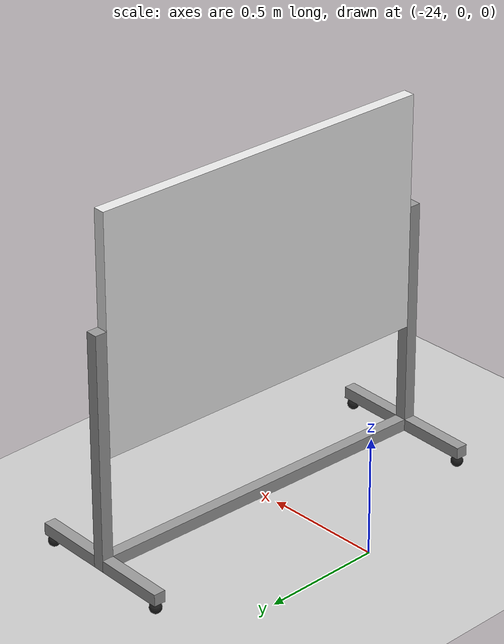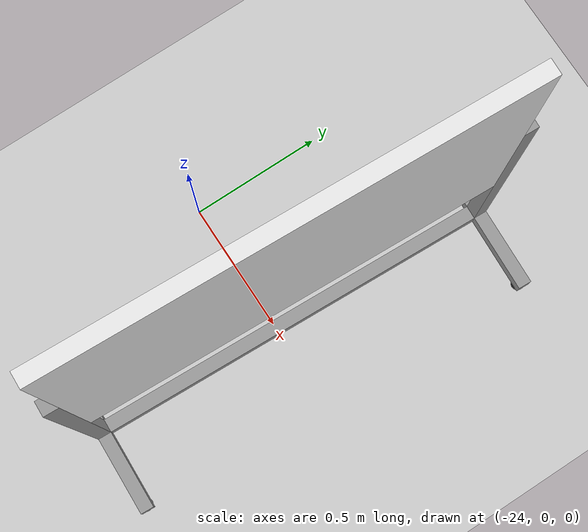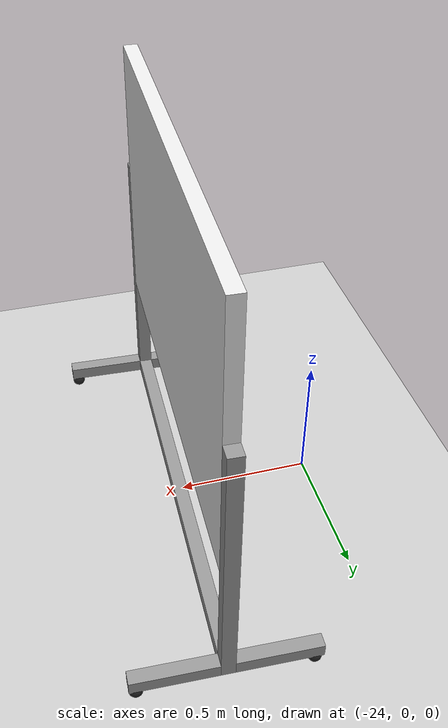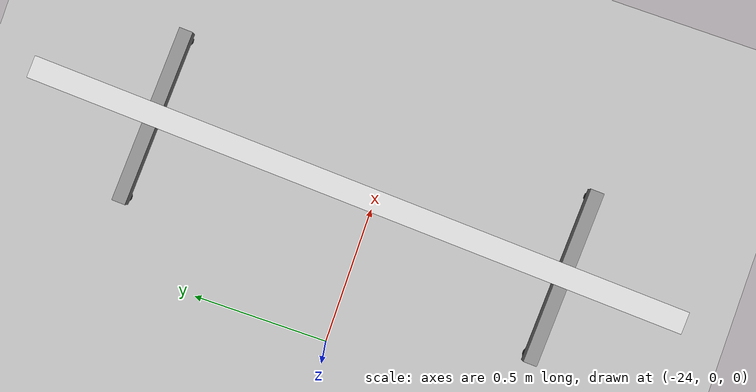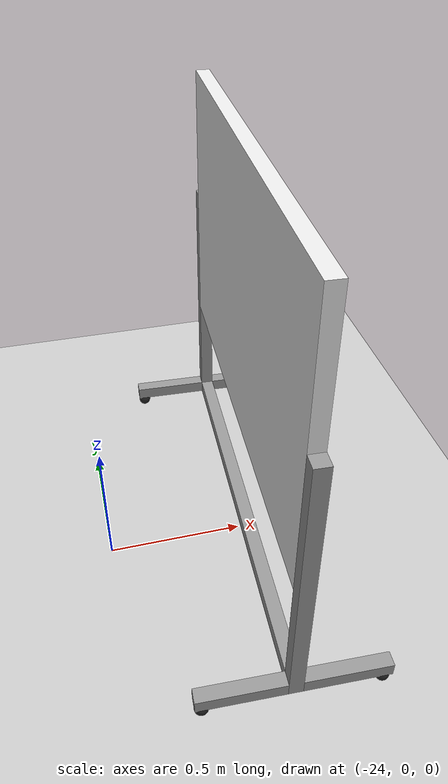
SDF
<sdf version="1.6">
 <world name="default">
  <model name="ground_plane">
   <static>1</static>
   <link name="link">
    <collision name="collision">
     <geometry><plane><normal>0 0 1</normal><size>100 100</size></plane></geometry>
     <surface><friction><ode><mu>100</mu><mu2>50</mu2></ode></friction></surface>
    </collision>
    <visual name="visual">
     <cast_shadows>0</cast_shadows>
     <geometry><plane><normal>0 0 1</normal><size>100 100</size></plane></geometry>
     <material>
      <script><uri>file://media/materials/scripts/gazebo.material</uri><name>Gazebo/Grey</name></script>
     </material>
    </visual>
   </link>
  </model>
  <model name="whiteboard">
   <link name="link_0">
    <pose>0 0 1.09583 0 -0 0</pose>
    <inertial>
     <mass>1</mass>
     <inertia>
      <ixx>0.166667</ixx>
      <ixy>0</ixy>
      <ixz>0</ixz>
      <iyy>0.166667</iyy>
      <iyz>0</iyz>
      <izz>0.166667</izz>
     </inertia>
    </inertial>
    <visual name="visual">
     <geometry><box><size>0.05 1.5 1</size></box></geometry>
     <material>
      <lighting>1</lighting>
      <script><uri>file://media/materials/scripts/gazebo.material</uri><name>Gazebo/White</name></script>
      <shader type="vertex"><normal_map>__default__</normal_map></shader>
     </material>
    </visual>
    <collision name="collision">
     <geometry><box><size>0.05 1.5 1</size></box></geometry>
     <surface>
      <friction>
       <ode><mu>1</mu><mu2>1</mu2><fdir1>0 0 0</fdir1><slip1>0</slip1><slip2>0</slip2></ode>
       <torsional>
        <coefficient>1</coefficient>
        <patch_radius>0</patch_radius>
        <surface_radius>0</surface_radius>
        <use_patch_radius>1</use_patch_radius>
        <ode><slip>0</slip></ode>
       </torsional>
      </friction>
      <bounce><restitution_coefficient>0</restitution_coefficient><threshold>1e+06</threshold></bounce>
      <contact>
       <collide_without_contact>0</collide_without_contact>
       <collide_without_contact_bitmask>1</collide_without_contact_bitmask>
       <collide_bitmask>1</collide_bitmask>
       <ode>
        <soft_cfm>0</soft_cfm>
        <soft_erp>0.2</soft_erp>
        <kp>1e+13</kp>
        <kd>1</kd>
        <max_vel>0.01</max_vel>
        <min_depth>0</min_depth>
       </ode>
       <bullet>
        <split_impulse>1</split_impulse>
        <split_impulse_penetration_threshold>-0.01</split_impulse_penetration_threshold>
        <soft_cfm>0</soft_cfm>
        <soft_erp>0.2</soft_erp>
        <kp>1e+13</kp>
        <kd>1</kd>
       </bullet>
      </contact>
     </surface>
    </collision>
   </link>
   <link name="link_1">
    <pose>0 0 0.145833 0 -0 0</pose>
    <inertial>
     <mass>1</mass>
     <inertia>
      <ixx>0.166667</ixx>
      <ixy>0</ixy>
      <ixz>0</ixz>
      <iyy>0.166667</iyy>
      <iyz>0</iyz>
      <izz>0.166667</izz>
     </inertia>
    </inertial>
    <visual name="visual">
     <geometry><box><size>0.05 1.5 0.05</size></box></geometry>
     <material>
      <lighting>1</lighting>
      <script><uri>file://media/materials/scripts/gazebo.material</uri><name>Gazebo/Grey</name></script>
      <ambient>0.3 0.3 0.3 1</ambient>
      <diffuse>0.7 0.7 0.7 1</diffuse>
      <specular>0.01 0.01 0.01 1</specular>
      <emissive>0 0 0 1</emissive>
      <shader type="vertex"><normal_map>__default__</normal_map></shader>
     </material>
    </visual>
    <collision name="collision">
     <geometry><box><size>0.05 1.5 0.05</size></box></geometry>
     <surface>
      <friction>
       <ode><mu>1</mu><mu2>1</mu2><fdir1>0 0 0</fdir1><slip1>0</slip1><slip2>0</slip2></ode>
       <torsional>
        <coefficient>1</coefficient>
        <patch_radius>0</patch_radius>
        <surface_radius>0</surface_radius>
        <use_patch_radius>1</use_patch_radius>
        <ode><slip>0</slip></ode>
       </torsional>
      </friction>
      <bounce><restitution_coefficient>0</restitution_coefficient><threshold>1e+06</threshold></bounce>
      <contact>
       <collide_without_contact>0</collide_without_contact>
       <collide_without_contact_bitmask>1</collide_without_contact_bitmask>
       <collide_bitmask>1</collide_bitmask>
       <ode>
        <soft_cfm>0</soft_cfm>
        <soft_erp>0.2</soft_erp>
        <kp>1e+13</kp>
        <kd>1</kd>
        <max_vel>0.01</max_vel>
        <min_depth>0</min_depth>
       </ode>
       <bullet>
        <split_impulse>1</split_impulse>
        <split_impulse_penetration_threshold>-0.01</split_impulse_penetration_threshold>
        <soft_cfm>0</soft_cfm>
        <soft_erp>0.2</soft_erp>
        <kp>1e+13</kp>
        <kd>1</kd>
       </bullet>
      </contact>
     </surface>
    </collision>
   </link>
   <link name="link_2">
    <pose>-0.175 -0.775 0.145833 0 -0 0</pose>
    <inertial>
     <mass>1</mass>
     <inertia>
      <ixx>0.166667</ixx>
      <ixy>0</ixy>
      <ixz>0</ixz>
      <iyy>0.166667</iyy>
      <iyz>0</iyz>
      <izz>0.166667</izz>
     </inertia>
    </inertial>
    <visual name="visual">
     <geometry><box><size>0.3 0.05 0.05</size></box></geometry>
     <material>
      <lighting>1</lighting>
      <script><uri>file://media/materials/scripts/gazebo.material</uri><name>Gazebo/Grey</name></script>
      <ambient>0.3 0.3 0.3 1</ambient>
      <diffuse>0.7 0.7 0.7 1</diffuse>
      <specular>0.01 0.01 0.01 1</specular>
      <emissive>0 0 0 1</emissive>
      <shader type="vertex"><normal_map>__default__</normal_map></shader>
     </material>
    </visual>
    <collision name="collision">
     <geometry><box><size>0.3 0.05 0.05</size></box></geometry>
     <surface>
      <friction>
       <ode><mu>1</mu><mu2>1</mu2><fdir1>0 0 0</fdir1><slip1>0</slip1><slip2>0</slip2></ode>
       <torsional>
        <coefficient>1</coefficient>
        <patch_radius>0</patch_radius>
        <surface_radius>0</surface_radius>
        <use_patch_radius>1</use_patch_radius>
        <ode><slip>0</slip></ode>
       </torsional>
      </friction>
      <bounce><restitution_coefficient>0</restitution_coefficient><threshold>1e+06</threshold></bounce>
      <contact>
       <collide_without_contact>0</collide_without_contact>
       <collide_without_contact_bitmask>1</collide_without_contact_bitmask>
       <collide_bitmask>1</collide_bitmask>
       <ode>
        <soft_cfm>0</soft_cfm>
        <soft_erp>0.2</soft_erp>
        <kp>1e+13</kp>
        <kd>1</kd>
        <max_vel>0.01</max_vel>
        <min_depth>0</min_depth>
       </ode>
       <bullet>
        <split_impulse>1</split_impulse>
        <split_impulse_penetration_threshold>-0.01</split_impulse_penetration_threshold>
        <soft_cfm>0</soft_cfm>
        <soft_erp>0.2</soft_erp>
        <kp>1e+13</kp>
        <kd>1</kd>
       </bullet>
      </contact>
     </surface>
    </collision>
   </link>
   <link name="link_2_clone">
    <pose>0.175 0.775 0.145833 0 -0 0</pose>
    <inertial>
     <mass>1</mass>
     <inertia>
      <ixx>0.166667</ixx>
      <ixy>0</ixy>
      <ixz>0</ixz>
      <iyy>0.166667</iyy>
      <iyz>0</iyz>
      <izz>0.166667</izz>
     </inertia>
    </inertial>
    <visual name="visual">
     <geometry><box><size>0.3 0.05 0.05</size></box></geometry>
     <material>
      <lighting>1</lighting>
      <script><uri>file://media/materials/scripts/gazebo.material</uri><name>Gazebo/Grey</name></script>
      <ambient>0.3 0.3 0.3 1</ambient>
      <diffuse>0.7 0.7 0.7 1</diffuse>
      <specular>0.01 0.01 0.01 1</specular>
      <emissive>0 0 0 1</emissive>
      <shader type="vertex"><normal_map>__default__</normal_map></shader>
     </material>
    </visual>
    <collision name="collision">
     <geometry><box><size>0.3 0.05 0.05</size></box></geometry>
     <surface>
      <friction>
       <ode><mu>1</mu><mu2>1</mu2><fdir1>0 0 0</fdir1><slip1>0</slip1><slip2>0</slip2></ode>
       <torsional>
        <coefficient>1</coefficient>
        <patch_radius>0</patch_radius>
        <surface_radius>0</surface_radius>
        <use_patch_radius>1</use_patch_radius>
        <ode><slip>0</slip></ode>
       </torsional>
      </friction>
      <bounce><restitution_coefficient>0</restitution_coefficient><threshold>1e+06</threshold></bounce>
      <contact>
       <collide_without_contact>0</collide_without_contact>
       <collide_without_contact_bitmask>1</collide_without_contact_bitmask>
       <collide_bitmask>1</collide_bitmask>
       <ode>
        <soft_cfm>0</soft_cfm>
        <soft_erp>0.2</soft_erp>
        <kp>1e+13</kp>
        <kd>1</kd>
        <max_vel>0.01</max_vel>
        <min_depth>0</min_depth>
       </ode>
       <bullet>
        <split_impulse>1</split_impulse>
        <split_impulse_penetration_threshold>-0.01</split_impulse_penetration_threshold>
        <soft_cfm>0</soft_cfm>
        <soft_erp>0.2</soft_erp>
        <kp>1e+13</kp>
        <kd>1</kd>
       </bullet>
      </contact>
     </surface>
    </collision>
   </link>
   <link name="link_2_clone_clone">
    <pose>0.175 -0.775 0.145833 0 -0 0</pose>
    <inertial>
     <mass>1</mass>
     <inertia>
      <ixx>0.166667</ixx>
      <ixy>0</ixy>
      <ixz>0</ixz>
      <iyy>0.166667</iyy>
      <iyz>0</iyz>
      <izz>0.166667</izz>
     </inertia>
    </inertial>
    <visual name="visual">
     <geometry><box><size>0.3 0.05 0.05</size></box></geometry>
     <material>
      <lighting>1</lighting>
      <script><uri>file://media/materials/scripts/gazebo.material</uri><name>Gazebo/Grey</name></script>
      <ambient>0.3 0.3 0.3 1</ambient>
      <diffuse>0.7 0.7 0.7 1</diffuse>
      <specular>0.01 0.01 0.01 1</specular>
      <emissive>0 0 0 1</emissive>
      <shader type="vertex"><normal_map>__default__</normal_map></shader>
     </material>
    </visual>
    <collision name="collision">
     <geometry><box><size>0.3 0.05 0.05</size></box></geometry>
     <surface>
      <friction>
       <ode><mu>1</mu><mu2>1</mu2><fdir1>0 0 0</fdir1><slip1>0</slip1><slip2>0</slip2></ode>
       <torsional>
        <coefficient>1</coefficient>
        <patch_radius>0</patch_radius>
        <surface_radius>0</surface_radius>
        <use_patch_radius>1</use_patch_radius>
        <ode><slip>0</slip></ode>
       </torsional>
      </friction>
      <bounce><restitution_coefficient>0</restitution_coefficient><threshold>1e+06</threshold></bounce>
      <contact>
       <collide_without_contact>0</collide_without_contact>
       <collide_without_contact_bitmask>1</collide_without_contact_bitmask>
       <collide_bitmask>1</collide_bitmask>
       <ode>
        <soft_cfm>0</soft_cfm>
        <soft_erp>0.2</soft_erp>
        <kp>1e+13</kp>
        <kd>1</kd>
        <max_vel>0.01</max_vel>
        <min_depth>0</min_depth>
       </ode>
       <bullet>
        <split_impulse>1</split_impulse>
        <split_impulse_penetration_threshold>-0.01</split_impulse_penetration_threshold>
        <soft_cfm>0</soft_cfm>
        <soft_erp>0.2</soft_erp>
        <kp>1e+13</kp>
        <kd>1</kd>
       </bullet>
      </contact>
     </surface>
    </collision>
   </link>
   <link name="link_2_clone_clone_clone">
    <pose>-0.175 0.775 0.145833 0 -0 0</pose>
    <inertial>
     <mass>1</mass>
     <inertia>
      <ixx>0.166667</ixx>
      <ixy>0</ixy>
      <ixz>0</ixz>
      <iyy>0.166667</iyy>
      <iyz>0</iyz>
      <izz>0.166667</izz>
     </inertia>
    </inertial>
    <visual name="visual">
     <geometry><box><size>0.3 0.05 0.05</size></box></geometry>
     <material>
      <lighting>1</lighting>
      <script><uri>file://media/materials/scripts/gazebo.material</uri><name>Gazebo/Grey</name></script>
      <ambient>0.3 0.3 0.3 1</ambient>
      <diffuse>0.7 0.7 0.7 1</diffuse>
      <specular>0.01 0.01 0.01 1</specular>
      <emissive>0 0 0 1</emissive>
      <shader type="vertex"><normal_map>__default__</normal_map></shader>
     </material>
    </visual>
    <collision name="collision">
     <geometry><box><size>0.3 0.05 0.05</size></box></geometry>
     <surface>
      <friction>
       <ode><mu>1</mu><mu2>1</mu2><fdir1>0 0 0</fdir1><slip1>0</slip1><slip2>0</slip2></ode>
       <torsional>
        <coefficient>1</coefficient>
        <patch_radius>0</patch_radius>
        <surface_radius>0</surface_radius>
        <use_patch_radius>1</use_patch_radius>
        <ode><slip>0</slip></ode>
       </torsional>
      </friction>
      <bounce><restitution_coefficient>0</restitution_coefficient><threshold>1e+06</threshold></bounce>
      <contact>
       <collide_without_contact>0</collide_without_contact>
       <collide_without_contact_bitmask>1</collide_without_contact_bitmask>
       <collide_bitmask>1</collide_bitmask>
       <ode>
        <soft_cfm>0</soft_cfm>
        <soft_erp>0.2</soft_erp>
        <kp>1e+13</kp>
        <kd>1</kd>
        <max_vel>0.01</max_vel>
        <min_depth>0</min_depth>
       </ode>
       <bullet>
        <split_impulse>1</split_impulse>
        <split_impulse_penetration_threshold>-0.01</split_impulse_penetration_threshold>
        <soft_cfm>0</soft_cfm>
        <soft_erp>0.2</soft_erp>
        <kp>1e+13</kp>
        <kd>1</kd>
       </bullet>
      </contact>
     </surface>
    </collision>
   </link>
   <link name="link_3">
    <pose>0 -0.775 0.620833 0 -0 0</pose>
    <inertial>
     <mass>1</mass>
     <inertia>
      <ixx>0.166667</ixx>
      <ixy>0</ixy>
      <ixz>0</ixz>
      <iyy>0.166667</iyy>
      <iyz>0</iyz>
      <izz>0.166667</izz>
     </inertia>
    </inertial>
    <visual name="visual">
     <geometry><box><size>0.05 0.05 1</size></box></geometry>
     <material>
      <lighting>1</lighting>
      <script><uri>file://media/materials/scripts/gazebo.material</uri><name>Gazebo/Grey</name></script>
      <ambient>0.3 0.3 0.3 1</ambient>
      <diffuse>0.7 0.7 0.7 1</diffuse>
      <specular>0.01 0.01 0.01 1</specular>
      <emissive>0 0 0 1</emissive>
      <shader type="vertex"><normal_map>__default__</normal_map></shader>
     </material>
    </visual>
    <collision name="collision">
     <geometry><box><size>0.05 0.05 1</size></box></geometry>
     <surface>
      <friction>
       <ode><mu>1</mu><mu2>1</mu2><fdir1>0 0 0</fdir1><slip1>0</slip1><slip2>0</slip2></ode>
       <torsional>
        <coefficient>1</coefficient>
        <patch_radius>0</patch_radius>
        <surface_radius>0</surface_radius>
        <use_patch_radius>1</use_patch_radius>
        <ode><slip>0</slip></ode>
       </torsional>
      </friction>
      <bounce><restitution_coefficient>0</restitution_coefficient><threshold>1e+06</threshold></bounce>
      <contact>
       <collide_without_contact>0</collide_without_contact>
       <collide_without_contact_bitmask>1</collide_without_contact_bitmask>
       <collide_bitmask>1</collide_bitmask>
       <ode>
        <soft_cfm>0</soft_cfm>
        <soft_erp>0.2</soft_erp>
        <kp>1e+13</kp>
        <kd>1</kd>
        <max_vel>0.01</max_vel>
        <min_depth>0</min_depth>
       </ode>
       <bullet>
        <split_impulse>1</split_impulse>
        <split_impulse_penetration_threshold>-0.01</split_impulse_penetration_threshold>
        <soft_cfm>0</soft_cfm>
        <soft_erp>0.2</soft_erp>
        <kp>1e+13</kp>
        <kd>1</kd>
       </bullet>
      </contact>
     </surface>
    </collision>
   </link>
   <link name="link_3_clone">
    <pose>0 0.775 0.620833 0 -0 0</pose>
    <inertial>
     <mass>1</mass>
     <inertia>
      <ixx>0.166667</ixx>
      <ixy>0</ixy>
      <ixz>0</ixz>
      <iyy>0.166667</iyy>
      <iyz>0</iyz>
      <izz>0.166667</izz>
     </inertia>
    </inertial>
    <visual name="visual">
     <geometry><box><size>0.05 0.05 1</size></box></geometry>
     <material>
      <lighting>1</lighting>
      <script><uri>file://media/materials/scripts/gazebo.material</uri><name>Gazebo/Grey</name></script>
      <ambient>0.3 0.3 0.3 1</ambient>
      <diffuse>0.7 0.7 0.7 1</diffuse>
      <specular>0.01 0.01 0.01 1</specular>
      <emissive>0 0 0 1</emissive>
      <shader type="vertex"><normal_map>__default__</normal_map></shader>
     </material>
    </visual>
    <collision name="collision">
     <geometry><box><size>0.05 0.05 1</size></box></geometry>
     <surface>
      <friction>
       <ode><mu>1</mu><mu2>1</mu2><fdir1>0 0 0</fdir1><slip1>0</slip1><slip2>0</slip2></ode>
       <torsional>
        <coefficient>1</coefficient>
        <patch_radius>0</patch_radius>
        <surface_radius>0</surface_radius>
        <use_patch_radius>1</use_patch_radius>
        <ode><slip>0</slip></ode>
       </torsional>
      </friction>
      <bounce><restitution_coefficient>0</restitution_coefficient><threshold>1e+06</threshold></bounce>
      <contact>
       <collide_without_contact>0</collide_without_contact>
       <collide_without_contact_bitmask>1</collide_without_contact_bitmask>
       <collide_bitmask>1</collide_bitmask>
       <ode>
        <soft_cfm>0</soft_cfm>
        <soft_erp>0.2</soft_erp>
        <kp>1e+13</kp>
        <kd>1</kd>
        <max_vel>0.01</max_vel>
        <min_depth>0</min_depth>
       </ode>
       <bullet>
        <split_impulse>1</split_impulse>
        <split_impulse_penetration_threshold>-0.01</split_impulse_penetration_threshold>
        <soft_cfm>0</soft_cfm>
        <soft_erp>0.2</soft_erp>
        <kp>1e+13</kp>
        <kd>1</kd>
       </bullet>
      </contact>
     </surface>
    </collision>
   </link>
   <link name="link_4">
    <pose>-0.3 -0.775 0.095833 0 -0 0</pose>
    <inertial>
     <mass>1</mass>
     <inertia><ixx>0.1</ixx><ixy>0</ixy><ixz>0</ixz><iyy>0.1</iyy><iyz>0</iyz><izz>0.1</izz></inertia>
    </inertial>
    <visual name="visual">
     <geometry><sphere><radius>0.025</radius></sphere></geometry>
     <material>
      <lighting>1</lighting>
      <script><uri>file://media/materials/scripts/gazebo.material</uri><name>Gazebo/Black</name></script>
      <shader type="vertex"><normal_map>__default__</normal_map></shader>
     </material>
    </visual>
    <collision name="collision">
     <geometry><sphere><radius>0.025</radius></sphere></geometry>
     <surface>
      <friction>
       <ode><mu>1</mu><mu2>1</mu2><fdir1>0 0 0</fdir1><slip1>0</slip1><slip2>0</slip2></ode>
       <torsional>
        <coefficient>1</coefficient>
        <patch_radius>0</patch_radius>
        <surface_radius>0</surface_radius>
        <use_patch_radius>1</use_patch_radius>
        <ode><slip>0</slip></ode>
       </torsional>
      </friction>
      <bounce><restitution_coefficient>0</restitution_coefficient><threshold>1e+06</threshold></bounce>
      <contact>
       <collide_without_contact>0</collide_without_contact>
       <collide_without_contact_bitmask>1</collide_without_contact_bitmask>
       <collide_bitmask>1</collide_bitmask>
       <ode>
        <soft_cfm>0</soft_cfm>
        <soft_erp>0.2</soft_erp>
        <kp>1e+13</kp>
        <kd>1</kd>
        <max_vel>0.01</max_vel>
        <min_depth>0</min_depth>
       </ode>
       <bullet>
        <split_impulse>1</split_impulse>
        <split_impulse_penetration_threshold>-0.01</split_impulse_penetration_threshold>
        <soft_cfm>0</soft_cfm>
        <soft_erp>0.2</soft_erp>
        <kp>1e+13</kp>
        <kd>1</kd>
       </bullet>
      </contact>
     </surface>
    </collision>
   </link>
   <link name="link_4_clone">
    <pose>0.3 0.775 0.095833 0 -0 0</pose>
    <inertial>
     <mass>1</mass>
     <inertia><ixx>0.1</ixx><ixy>0</ixy><ixz>0</ixz><iyy>0.1</iyy><iyz>0</iyz><izz>0.1</izz></inertia>
    </inertial>
    <visual name="visual">
     <geometry><sphere><radius>0.025</radius></sphere></geometry>
     <material>
      <lighting>1</lighting>
      <script><uri>file://media/materials/scripts/gazebo.material</uri><name>Gazebo/Black</name></script>
      <shader type="vertex"><normal_map>__default__</normal_map></shader>
     </material>
    </visual>
    <collision name="collision">
     <geometry><sphere><radius>0.025</radius></sphere></geometry>
     <surface>
      <friction>
       <ode><mu>1</mu><mu2>1</mu2><fdir1>0 0 0</fdir1><slip1>0</slip1><slip2>0</slip2></ode>
       <torsional>
        <coefficient>1</coefficient>
        <patch_radius>0</patch_radius>
        <surface_radius>0</surface_radius>
        <use_patch_radius>1</use_patch_radius>
        <ode><slip>0</slip></ode>
       </torsional>
      </friction>
      <bounce><restitution_coefficient>0</restitution_coefficient><threshold>1e+06</threshold></bounce>
      <contact>
       <collide_without_contact>0</collide_without_contact>
       <collide_without_contact_bitmask>1</collide_without_contact_bitmask>
       <collide_bitmask>1</collide_bitmask>
       <ode>
        <soft_cfm>0</soft_cfm>
        <soft_erp>0.2</soft_erp>
        <kp>1e+13</kp>
        <kd>1</kd>
        <max_vel>0.01</max_vel>
        <min_depth>0</min_depth>
       </ode>
       <bullet>
        <split_impulse>1</split_impulse>
        <split_impulse_penetration_threshold>-0.01</split_impulse_penetration_threshold>
        <soft_cfm>0</soft_cfm>
        <soft_erp>0.2</soft_erp>
        <kp>1e+13</kp>
        <kd>1</kd>
       </bullet>
      </contact>
     </surface>
    </collision>
   </link>
   <link name="link_4_clone_clone">
    <pose>-0.3 0.775 0.095833 0 -0 0</pose>
    <inertial>
     <mass>1</mass>
     <inertia><ixx>0.1</ixx><ixy>0</ixy><ixz>0</ixz><iyy>0.1</iyy><iyz>0</iyz><izz>0.1</izz></inertia>
    </inertial>
    <visual name="visual">
     <geometry><sphere><radius>0.025</radius></sphere></geometry>
     <material>
      <lighting>1</lighting>
      <script><uri>file://media/materials/scripts/gazebo.material</uri><name>Gazebo/Black</name></script>
      <shader type="vertex"><normal_map>__default__</normal_map></shader>
     </material>
    </visual>
    <collision name="collision">
     <geometry><sphere><radius>0.025</radius></sphere></geometry>
     <surface>
      <friction>
       <ode><mu>1</mu><mu2>1</mu2><fdir1>0 0 0</fdir1><slip1>0</slip1><slip2>0</slip2></ode>
       <torsional>
        <coefficient>1</coefficient>
        <patch_radius>0</patch_radius>
        <surface_radius>0</surface_radius>
        <use_patch_radius>1</use_patch_radius>
        <ode><slip>0</slip></ode>
       </torsional>
      </friction>
      <bounce><restitution_coefficient>0</restitution_coefficient><threshold>1e+06</threshold></bounce>
      <contact>
       <collide_without_contact>0</collide_without_contact>
       <collide_without_contact_bitmask>1</collide_without_contact_bitmask>
       <collide_bitmask>1</collide_bitmask>
       <ode>
        <soft_cfm>0</soft_cfm>
        <soft_erp>0.2</soft_erp>
        <kp>1e+13</kp>
        <kd>1</kd>
        <max_vel>0.01</max_vel>
        <min_depth>0</min_depth>
       </ode>
       <bullet>
        <split_impulse>1</split_impulse>
        <split_impulse_penetration_threshold>-0.01</split_impulse_penetration_threshold>
        <soft_cfm>0</soft_cfm>
        <soft_erp>0.2</soft_erp>
        <kp>1e+13</kp>
        <kd>1</kd>
       </bullet>
      </contact>
     </surface>
    </collision>
   </link>
   <link name="link_4_clone_clone_clone">
    <pose>0.3 -0.775 0.095833 0 -0 0</pose>
    <inertial>
     <mass>1</mass>
     <inertia><ixx>0.1</ixx><ixy>0</ixy><ixz>0</ixz><iyy>0.1</iyy><iyz>0</iyz><izz>0.1</izz></inertia>
    </inertial>
    <visual name="visual">
     <geometry><sphere><radius>0.025</radius></sphere></geometry>
     <material>
      <lighting>1</lighting>
      <script><uri>file://media/materials/scripts/gazebo.material</uri><name>Gazebo/Black</name></script>
      <shader type="vertex"><normal_map>__default__</normal_map></shader>
     </material>
    </visual>
    <collision name="collision">
     <geometry><sphere><radius>0.025</radius></sphere></geometry>
     <surface>
      <friction>
       <ode><mu>1</mu><mu2>1</mu2><fdir1>0 0 0</fdir1><slip1>0</slip1><slip2>0</slip2></ode>
       <torsional>
        <coefficient>1</coefficient>
        <patch_radius>0</patch_radius>
        <surface_radius>0</surface_radius>
        <use_patch_radius>1</use_patch_radius>
        <ode><slip>0</slip></ode>
       </torsional>
      </friction>
      <bounce><restitution_coefficient>0</restitution_coefficient><threshold>1e+06</threshold></bounce>
      <contact>
       <collide_without_contact>0</collide_without_contact>
       <collide_without_contact_bitmask>1</collide_without_contact_bitmask>
       <collide_bitmask>1</collide_bitmask>
       <ode>
        <soft_cfm>0</soft_cfm>
        <soft_erp>0.2</soft_erp>
        <kp>1e+13</kp>
        <kd>1</kd>
        <max_vel>0.01</max_vel>
        <min_depth>0</min_depth>
       </ode>
       <bullet>
        <split_impulse>1</split_impulse>
        <split_impulse_penetration_threshold>-0.01</split_impulse_penetration_threshold>
        <soft_cfm>0</soft_cfm>
        <soft_erp>0.2</soft_erp>
        <kp>1e+13</kp>
        <kd>1</kd>
       </bullet>
      </contact>
     </surface>
    </collision>
   </link>
   <joint name="link_1_JOINT_0" type="fixed">
    <parent>link_1</parent>
    <child>link_3</child>
    <physics>
     <ode><limit><cfm>0</cfm><erp>0.2</erp></limit><suspension><cfm>0</cfm><erp>0.2</erp></suspension></ode>
    </physics>
   </joint>
   <joint name="link_1_JOINT_3" type="fixed">
    <parent>link_1</parent>
    <child>link_3_clone</child>
    <physics>
     <ode><limit><cfm>0</cfm><erp>0.2</erp></limit><suspension><cfm>0</cfm><erp>0.2</erp></suspension></ode>
    </physics>
   </joint>
   <joint name="link_2_JOINT_12" type="ball">
    <parent>link_2</parent>
    <child>link_4</child>
    <physics>
     <ode><limit><cfm>0</cfm><erp>0.2</erp></limit><suspension><cfm>0</cfm><erp>0.2</erp></suspension></ode>
    </physics>
   </joint>
   <joint name="link_2_clone_JOINT_10" type="ball">
    <parent>link_2_clone</parent>
    <child>link_4_clone</child>
    <physics>
     <ode><limit><cfm>0</cfm><erp>0.2</erp></limit><suspension><cfm>0</cfm><erp>0.2</erp></suspension></ode>
    </physics>
   </joint>
   <joint name="link_2_clone_clone_JOINT_9" type="ball">
    <parent>link_2_clone_clone</parent>
    <child>link_4_clone_clone_clone</child>
    <physics>
     <ode><limit><cfm>0</cfm><erp>0.2</erp></limit><suspension><cfm>0</cfm><erp>0.2</erp></suspension></ode>
    </physics>
   </joint>
   <joint name="link_2_clone_clone_clone_JOINT_11" type="ball">
    <parent>link_2_clone_clone_clone</parent>
    <child>link_4_clone_clone</child>
    <physics>
     <ode><limit><cfm>0</cfm><erp>0.2</erp></limit><suspension><cfm>0</cfm><erp>0.2</erp></suspension></ode>
    </physics>
   </joint>
   <joint name="link_3_JOINT_1" type="fixed">
    <parent>link_3</parent>
    <child>link_2_clone_clone</child>
    <physics>
     <ode><limit><cfm>0</cfm><erp>0.2</erp></limit><suspension><cfm>0</cfm><erp>0.2</erp></suspension></ode>
    </physics>
   </joint>
   <joint name="link_3_JOINT_2" type="fixed">
    <parent>link_3</parent>
    <child>link_2</child>
    <physics>
     <ode><limit><cfm>0</cfm><erp>0.2</erp></limit><suspension><cfm>0</cfm><erp>0.2</erp></suspension></ode>
    </physics>
   </joint>
   <joint name="link_3_JOINT_6" type="fixed">
    <parent>link_3</parent>
    <child>link_0</child>
    <physics>
     <ode><limit><cfm>0</cfm><erp>0.2</erp></limit><suspension><cfm>0</cfm><erp>0.2</erp></suspension></ode>
    </physics>
   </joint>
   <joint name="link_3_clone_JOINT_4" type="fixed">
    <parent>link_3_clone</parent>
    <child>link_2_clone</child>
    <physics>
     <ode><limit><cfm>0</cfm><erp>0.2</erp></limit><suspension><cfm>0</cfm><erp>0.2</erp></suspension></ode>
    </physics>
   </joint>
   <joint name="link_3_clone_JOINT_5" type="fixed">
    <parent>link_3_clone</parent>
    <child>link_2_clone_clone_clone</child>
    <physics>
     <ode><limit><cfm>0</cfm><erp>0.2</erp></limit><suspension><cfm>0</cfm><erp>0.2</erp></suspension></ode>
    </physics>
   </joint>
   <joint name="link_3_clone_JOINT_7" type="fixed">
    <parent>link_3_clone</parent>
    <child>link_0</child>
    <physics>
     <ode><limit><cfm>0</cfm><erp>0.2</erp></limit><suspension><cfm>0</cfm><erp>0.2</erp></suspension></ode>
    </physics>
   </joint>
   <static>0</static>
   <pose>-23.4712 0.060353 -0.070833 1e-06 -2e-06 -0.043641</pose>
  </model>
 </world>
</sdf>
